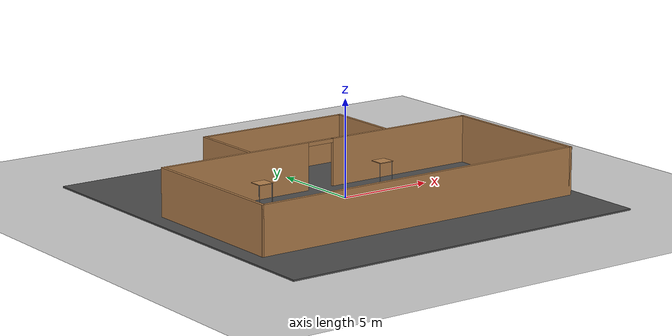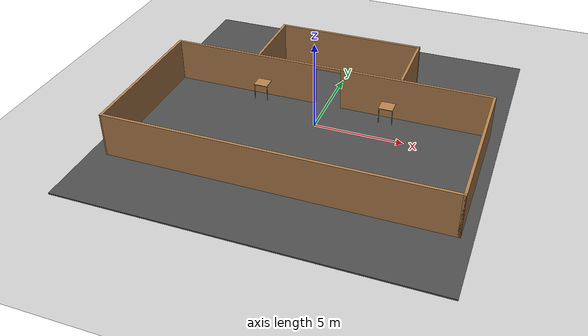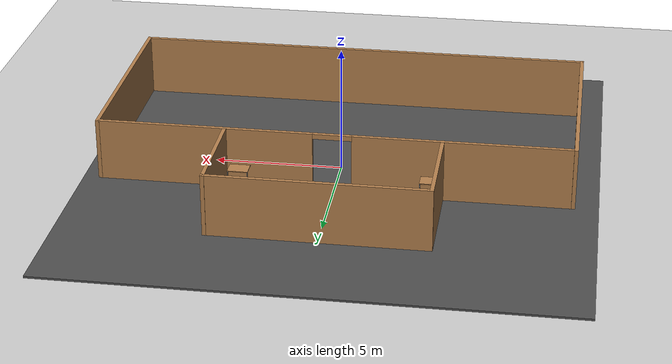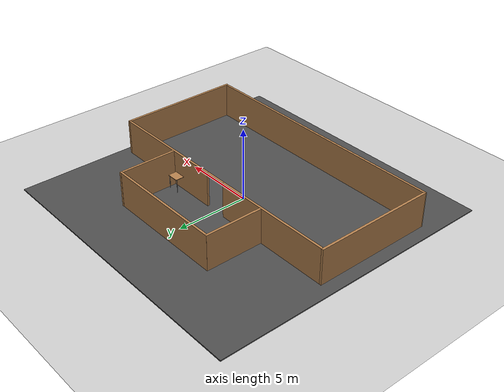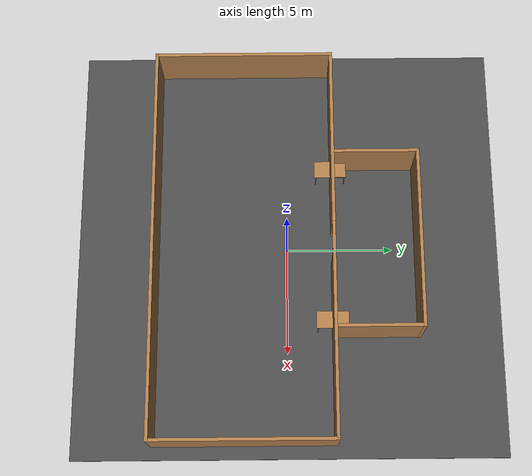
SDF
<sdf version="1.7">
 <world name="default">
  <light name="sun" type="directional">
   <pose>0 0 10 0 -0 0</pose>
   <diffuse>0.8 0.8 0.8 1</diffuse>
   <specular>0.2 0.2 0.2 1</specular>
   <attenuation>
    <range>1000</range>
    <constant>0.9</constant>
    <linear>0.01</linear>
    <quadratic>0.001</quadratic>
   </attenuation>
   <direction>-0.5 0.1 -0.9</direction>
   <spot><inner_angle>0</inner_angle><outer_angle>0</outer_angle><falloff>0</falloff></spot>
  </light>
  <model name="ground_plane">
   <static>1</static>
   <link name="link">
    <collision name="collision">
     <geometry><plane><normal>0 0 1</normal><size>100 100</size></plane></geometry>
     <surface><friction><ode><mu>100</mu><mu2>50</mu2></ode></friction></surface>
    </collision>
    <visual name="visual">
     <cast_shadows>0</cast_shadows>
     <geometry><plane><normal>0 0 1</normal><size>100 100</size></plane></geometry>
     <material>
      <script><uri>file://media/materials/scripts/gazebo.material</uri><name>Gazebo/Grey</name></script>
     </material>
    </visual>
   </link>
  </model>
  <gravity>0 0 -9.8</gravity>
  <magnetic_field>6e-06 2.3e-05 -4.2e-05</magnetic_field>
  <atmosphere type="adiabatic"/>
  <physics type="ode">
   <max_step_size>0.001</max_step_size>
   <real_time_factor>1</real_time_factor>
   <real_time_update_rate>1000</real_time_update_rate>
  </physics>
  <scene><ambient>0.4 0.4 0.4 1</ambient><background>0.7 0.7 0.7 1</background><shadows>1</shadows></scene>
  <audio><device>default</device></audio>
  <spherical_coordinates>
   <surface_model>EARTH_WGS84</surface_model>
   <latitude_deg>0</latitude_deg>
   <longitude_deg>0</longitude_deg>
   <elevation>0</elevation>
   <heading_deg>0</heading_deg>
  </spherical_coordinates>
  <model name="supermarket_worldo">
   <link name="Wall_13">
    <collision name="Wall_13_Collision">
     <geometry><box><size>4 0.15 2.5</size></box></geometry>
     <pose>0 0 1.25 0 -0 0</pose>
    </collision>
    <visual name="Wall_13_Visual">
     <pose>0 0 1.25 0 -0 0</pose>
     <geometry><box><size>4 0.15 2.5</size></box></geometry>
     <material>
      <script><uri>file://media/materials/scripts/gazebo.material</uri><name>Gazebo/Wood</name></script>
      <ambient>1 0.764706 0.305882 1</ambient>
     </material>
     <meta><layer>0</layer></meta>
    </visual>
    <pose>4.18507 4.24995 0 0 -0 1.5708</pose>
   </link>
   <link name="Wall_14">
    <collision name="Wall_14_Collision">
     <geometry><box><size>8.50002 0.15 2.5</size></box></geometry>
     <pose>0 0 1.25 0 -0 0</pose>
    </collision>
    <visual name="Wall_14_Visual">
     <pose>0 0 1.25 0 -0 0</pose>
     <geometry><box><size>8.50002 0.15 2.5</size></box></geometry>
     <material>
      <script><uri>file://media/materials/scripts/gazebo.material</uri><name>Gazebo/Wood</name></script>
      <ambient>1 0.764706 0.305882 1</ambient>
     </material>
     <meta><layer>0</layer></meta>
    </visual>
    <pose>0.010067 6.16528 0 0 -0 3.14144</pose>
   </link>
   <link name="Wall_19">
    <collision name="Wall_19_Collision">
     <geometry><box><size>18.5 0.15 2.5</size></box></geometry>
     <pose>0 0 1.25 0 -0 0</pose>
    </collision>
    <visual name="Wall_19_Visual">
     <pose>0 0 1.25 0 -0 0</pose>
     <geometry><box><size>18.5 0.15 2.5</size></box></geometry>
     <material>
      <script><uri>file://media/materials/scripts/gazebo.material</uri><name>Gazebo/Wood</name></script>
      <ambient>1 0.764706 0.305882 1</ambient>
     </material>
     <meta><layer>0</layer></meta>
    </visual>
    <pose>0.002206 -6.17491 0 0 -0 0</pose>
   </link>
   <link name="Wall_2">
    <collision name="Wall_2_Collision">
     <geometry><box><size>8.5 0.15 2.5</size></box></geometry>
     <pose>0 0 1.25 0 -0 0</pose>
    </collision>
    <visual name="Wall_2_Visual">
     <pose>0 0 1.25 0 -0 0</pose>
     <geometry><box><size>8.5 0.15 2.5</size></box></geometry>
     <material>
      <script><uri>file://media/materials/scripts/gazebo.material</uri><name>Gazebo/Wood</name></script>
      <ambient>1 0.764706 0.305882 1</ambient>
     </material>
     <meta><layer>0</layer></meta>
    </visual>
    <pose>-9.17498 -1.99991 0 0 -0 1.57132</pose>
   </link>
   <link name="Wall_20">
    <collision name="Wall_20_Collision">
     <geometry><box><size>8.5 0.15 2.5</size></box></geometry>
     <pose>0 0 1.25 0 -0 0</pose>
    </collision>
    <visual name="Wall_20_Visual">
     <pose>0 0 1.25 0 -0 0</pose>
     <geometry><box><size>8.5 0.15 2.5</size></box></geometry>
     <material>
      <script><uri>file://media/materials/scripts/gazebo.material</uri><name>Gazebo/Wood</name></script>
      <ambient>1 0.764706 0.305882 1</ambient>
     </material>
     <meta><layer>0</layer></meta>
    </visual>
    <pose>9.17721 -1.99991 0 0 -0 1.5708</pose>
   </link>
   <link name="Wall_22">
    <collision name="Wall_22_Collision">
     <geometry><box><size>4 0.15 2.5</size></box></geometry>
     <pose>0 0 1.25 0 -0 0</pose>
    </collision>
    <visual name="Wall_22_Visual">
     <pose>0 0 1.25 0 -0 0</pose>
     <geometry><box><size>4 0.15 2.5</size></box></geometry>
     <material>
      <script><uri>file://media/materials/scripts/gazebo.material</uri><name>Gazebo/Wood</name></script>
      <ambient>1 0.764706 0.305882 1</ambient>
     </material>
     <meta><layer>0</layer></meta>
    </visual>
    <pose>-4.1688 4.2409 0 0 -0 -1.5708</pose>
   </link>
   <link name="Wall_5">
    <pose>0.025561 2.1737 0 0 -0 0</pose>
    <visual name="Wall_5_Visual_0">
     <pose>-4.93489 0 1.25 0 -0 0</pose>
     <geometry><box><size>8.38022 0.15 2.5</size></box></geometry>
     <material>
      <script><uri>file://media/materials/scripts/gazebo.material</uri><name>Gazebo/Wood</name></script>
      <ambient>1 0.764706 0.305882 1</ambient>
     </material>
     <meta><layer>0</layer></meta>
    </visual>
    <collision name="Wall_5_Collision_0">
     <geometry><box><size>8.38022 0.15 2.5</size></box></geometry>
     <pose>-4.93489 0 1.25 0 -0 0</pose>
    </collision>
    <visual name="Wall_5_Visual_1">
     <pose>4.94011 0 1.25 0 -0 0</pose>
     <geometry><box><size>8.36978 0.15 2.5</size></box></geometry>
     <material>
      <script><uri>file://media/materials/scripts/gazebo.material</uri><name>Gazebo/Wood</name></script>
      <ambient>1 0.764706 0.305882 1</ambient>
     </material>
     <meta><layer>0</layer></meta>
    </visual>
    <collision name="Wall_5_Collision_1">
     <geometry><box><size>8.36978 0.15 2.5</size></box></geometry>
     <pose>4.94011 0 1.25 0 -0 0</pose>
    </collision>
    <visual name="Wall_5_Visual_2">
     <pose>0.005218 0 0 0 -0 0</pose>
     <geometry><box><size>1.5 0.15 0</size></box></geometry>
     <material>
      <script><uri>file://media/materials/scripts/gazebo.material</uri><name>Gazebo/Wood</name></script>
      <ambient>1 0.764706 0.305882 1</ambient>
     </material>
     <meta><layer>0</layer></meta>
    </visual>
    <collision name="Wall_5_Collision_2">
     <geometry><box><size>1.5 0.15 0</size></box></geometry>
     <pose>0.005218 0 0 0 -0 0</pose>
    </collision>
    <visual name="Wall_5_Visual_3">
     <pose>0.005218 0 2.4 0 -0 0</pose>
     <geometry><box><size>1.5 0.15 0.2</size></box></geometry>
     <material>
      <script><uri>file://media/materials/scripts/gazebo.material</uri><name>Gazebo/Wood</name></script>
      <ambient>1 0.764706 0.305882 1</ambient>
     </material>
     <meta><layer>0</layer></meta>
    </visual>
    <collision name="Wall_5_Collision_3">
     <geometry><box><size>1.5 0.15 0.2</size></box></geometry>
     <pose>0.005218 0 2.4 0 -0 0</pose>
    </collision>
   </link>
   <static>1</static>
  </model>
  <model name="table">
   <static>1</static>
   <link name="link">
    <collision name="surface">
     <pose>0 0 1 0 -0 0</pose>
     <geometry><box><size>1.5 0.8 0.03</size></box></geometry>
     <surface><friction><ode><mu>0.6</mu><mu2>0.6</mu2></ode></friction></surface>
    </collision>
    <visual name="visual1">
     <pose>0 0 1 0 -0 0</pose>
     <geometry><box><size>1.5 0.8 0.03</size></box></geometry>
     <material>
      <script><uri>file://media/materials/scripts/gazebo.material</uri><name>Gazebo/Wood</name></script>
     </material>
    </visual>
    <collision name="front_left_leg">
     <pose>0.68 0.38 0.5 0 -0 0</pose>
     <geometry><cylinder><radius>0.02</radius><length>1</length></cylinder></geometry>
    </collision>
    <visual name="front_left_leg">
     <pose>0.68 0.38 0.5 0 -0 0</pose>
     <geometry><cylinder><radius>0.02</radius><length>1</length></cylinder></geometry>
     <material>
      <script><uri>file://media/materials/scripts/gazebo.material</uri><name>Gazebo/Grey</name></script>
     </material>
    </visual>
    <collision name="front_right_leg">
     <pose>0.68 -0.38 0.5 0 -0 0</pose>
     <geometry><cylinder><radius>0.02</radius><length>1</length></cylinder></geometry>
    </collision>
    <visual name="front_right_leg">
     <pose>0.68 -0.38 0.5 0 -0 0</pose>
     <geometry><cylinder><radius>0.02</radius><length>1</length></cylinder></geometry>
     <material>
      <script><uri>file://media/materials/scripts/gazebo.material</uri><name>Gazebo/Grey</name></script>
     </material>
    </visual>
    <collision name="back_right_leg">
     <pose>-0.68 -0.38 0.5 0 -0 0</pose>
     <geometry><cylinder><radius>0.02</radius><length>1</length></cylinder></geometry>
    </collision>
    <visual name="back_right_leg">
     <pose>-0.68 -0.38 0.5 0 -0 0</pose>
     <geometry><cylinder><radius>0.02</radius><length>1</length></cylinder></geometry>
     <material>
      <script><uri>file://media/materials/scripts/gazebo.material</uri><name>Gazebo/Grey</name></script>
     </material>
    </visual>
    <collision name="back_left_leg">
     <pose>-0.68 0.38 0.5 0 -0 0</pose>
     <geometry><cylinder><radius>0.02</radius><length>1</length></cylinder></geometry>
    </collision>
    <visual name="back_left_leg">
     <pose>-0.68 0.38 0.5 0 -0 0</pose>
     <geometry><cylinder><radius>0.02</radius><length>1</length></cylinder></geometry>
     <material>
      <script><uri>file://media/materials/scripts/gazebo.material</uri><name>Gazebo/Grey</name></script>
     </material>
    </visual>
   </link>
   <pose>3.6 2.1 0 0 -0 1.57</pose>
  </model>
  <model name="table_0">
   <static>1</static>
   <link name="link">
    <collision name="surface">
     <pose>0 0 1 0 -0 0</pose>
     <geometry><box><size>1.5 0.8 0.03</size></box></geometry>
     <surface><friction><ode><mu>0.6</mu><mu2>0.6</mu2></ode></friction></surface>
    </collision>
    <visual name="visual1">
     <pose>0 0 1 0 -0 0</pose>
     <geometry><box><size>1.5 0.8 0.03</size></box></geometry>
     <material>
      <script><uri>file://media/materials/scripts/gazebo.material</uri><name>Gazebo/Wood</name></script>
     </material>
    </visual>
    <collision name="front_left_leg">
     <pose>0.68 0.38 0.5 0 -0 0</pose>
     <geometry><cylinder><radius>0.02</radius><length>1</length></cylinder></geometry>
    </collision>
    <visual name="front_left_leg">
     <pose>0.68 0.38 0.5 0 -0 0</pose>
     <geometry><cylinder><radius>0.02</radius><length>1</length></cylinder></geometry>
     <material>
      <script><uri>file://media/materials/scripts/gazebo.material</uri><name>Gazebo/Grey</name></script>
     </material>
    </visual>
    <collision name="front_right_leg">
     <pose>0.68 -0.38 0.5 0 -0 0</pose>
     <geometry><cylinder><radius>0.02</radius><length>1</length></cylinder></geometry>
    </collision>
    <visual name="front_right_leg">
     <pose>0.68 -0.38 0.5 0 -0 0</pose>
     <geometry><cylinder><radius>0.02</radius><length>1</length></cylinder></geometry>
     <material>
      <script><uri>file://media/materials/scripts/gazebo.material</uri><name>Gazebo/Grey</name></script>
     </material>
    </visual>
    <collision name="back_right_leg">
     <pose>-0.68 -0.38 0.5 0 -0 0</pose>
     <geometry><cylinder><radius>0.02</radius><length>1</length></cylinder></geometry>
    </collision>
    <visual name="back_right_leg">
     <pose>-0.68 -0.38 0.5 0 -0 0</pose>
     <geometry><cylinder><radius>0.02</radius><length>1</length></cylinder></geometry>
     <material>
      <script><uri>file://media/materials/scripts/gazebo.material</uri><name>Gazebo/Grey</name></script>
     </material>
    </visual>
    <collision name="back_left_leg">
     <pose>-0.68 0.38 0.5 0 -0 0</pose>
     <geometry><cylinder><radius>0.02</radius><length>1</length></cylinder></geometry>
    </collision>
    <visual name="back_left_leg">
     <pose>-0.68 0.38 0.5 0 -0 0</pose>
     <geometry><cylinder><radius>0.02</radius><length>1</length></cylinder></geometry>
     <material>
      <script><uri>file://media/materials/scripts/gazebo.material</uri><name>Gazebo/Grey</name></script>
     </material>
    </visual>
   </link>
   <pose>-3.78 2.1 0 0 -0 1.57</pose>
  </model>
  <model name="asphalt_plane">
   <static>1</static>
   <link name="link">
    <collision name="collision"><geometry><box><size>20 20 0.1</size></box></geometry></collision>
    <visual name="visual">
     <cast_shadows>0</cast_shadows>
     <geometry><box><size>20 20 0.1</size></box></geometry>
     <material>
      <script>
       <uri>model://asphalt_plane/materials/scripts</uri>
       <uri>model://asphalt_plane/materials/textures</uri>
       <name>vrc/asphalt</name>
      </script>
     </material>
    </visual>
   </link>
   <pose>-0.14555 0.068249 0 0 -0 0</pose>
  </model>
 </world>
</sdf>
